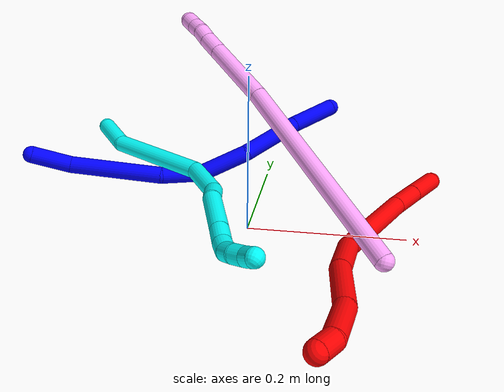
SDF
<sdf version="1.7">
 <world name="default">
  <plugin name="TubeGeneratorPlugin" filename="libtube_generator_plugin.so"/>
  <model name="photoneo_s_sensor">
   <static>1</static>
   <pose>0 0 2 1.57079 1.57079 3.14159</pose>
   <link name="link">
    <inertial><mass>0.1</mass></inertial>
    <sensor name="sensor" type="depth">
     <update_rate>30</update_rate>
     <camera>
      <horizontal_fov>1.22</horizontal_fov>
      <image><width>1920</width><height>1200</height><format>B8G8R8</format></image>
      <clip><near>0.1</near><far>4</far></clip>
      <depth_camera><output>points</output></depth_camera>
     </camera>
     <plugin name="camera_plugin" filename="libgazebo_ros_depth_camera.so">
      <baseline>0.2</baseline>
      <alwaysOn>1</alwaysOn>
      <updateRate>0.0</updateRate>
      <cameraName>camera_ir</cameraName>
      <imageTopicName>/camera/color/image_raw</imageTopicName>
      <cameraInfoTopicName>/camera/color/camera_info</cameraInfoTopicName>
      <depthImageTopicName>/camera/depth/image_raw</depthImageTopicName>
      <depthImageCameraInfoTopicName>/camera/depth/camera_info</depthImageCameraInfoTopicName>
      <pointCloudTopicName>/camera/depth/points</pointCloudTopicName>
      <frameName>fr_optical</frameName>
      <pointCloudCutoff>0.1</pointCloudCutoff>
      <pointCloudCutoffMax>2.0</pointCloudCutoffMax>
      <distortionK1>0</distortionK1>
      <distortionK2>0</distortionK2>
      <distortionK3>0</distortionK3>
      <distortionT1>0</distortionT1>
      <distortionT2>0</distortionT2>
      <CxPrime>0</CxPrime>
      <Cx>0</Cx>
      <Cy>0</Cy>
      <focalLength>0</focalLength>
      <hackBaseline>0</hackBaseline>
     </plugin>
    </sensor>
   </link>
  </model>
  <gravity>0 0 -9.8</gravity>
  <magnetic_field>6e-06 2.3e-05 -4.2e-05</magnetic_field>
  <atmosphere type="adiabatic"/>
  <physics name="default_physics" default="0" type="ode">
   <max_step_size>0.003</max_step_size>
   <real_time_factor>1</real_time_factor>
   <real_time_update_rate>1000</real_time_update_rate>
   <max_contacts>10000</max_contacts>
   <ode>
    <solver>
     <type>quick</type>
     <iters>100</iters>
     <sor>1.3</sor>
     <use_dynamic_moi_rescaling>0</use_dynamic_moi_rescaling>
    </solver>
    <constraints>
     <contact_max_correcting_vel>0</contact_max_correcting_vel>
     <contact_surface_layer>0.001</contact_surface_layer>
     <cfm>0</cfm>
     <erp>0.2</erp>
    </constraints>
   </ode>
  </physics>
  <scene><ambient>0.4 0.4 0.4 1</ambient><background>0.7 0.7 0.7 1</background><shadows>0</shadows></scene>
  <audio><device>default</device></audio>
  <spherical_coordinates>
   <surface_model>EARTH_WGS84</surface_model>
   <latitude_deg>0</latitude_deg>
   <longitude_deg>0</longitude_deg>
   <elevation>0</elevation>
   <heading_deg>0</heading_deg>
  </spherical_coordinates>
  <model name="bin">
   <static>1</static>
   <link name="bottom">
    <collision name="collision-bottom">
     <pose>0 0 -0.01 0 -0 0</pose>
     <geometry><box><size>0.8 0.6 0.02</size></box></geometry>
     <surface>
      <friction><ode><mu>100</mu><mu2>100</mu2></ode></friction>
      <contact><collide_bitmask>65535</collide_bitmask></contact>
     </surface>
    </collision>
   </link>
   <link name="west_wall">
    <collision name="collision-west_wall">
     <pose>-0.41 0 0.1 0 -0 0</pose>
     <geometry><box><size>0.02 0.6 0.2</size></box></geometry>
     <surface>
      <friction><ode><mu>100</mu><mu2>100</mu2></ode></friction>
      <contact><collide_bitmask>65535</collide_bitmask></contact>
     </surface>
    </collision>
   </link>
   <link name="east_wall">
    <collision name="collision-east_wall">
     <pose>0.41 0 0.1 0 -0 0</pose>
     <geometry><box><size>0.02 0.6 0.2</size></box></geometry>
     <surface>
      <friction><ode><mu>100</mu><mu2>100</mu2></ode></friction>
      <contact><collide_bitmask>65535</collide_bitmask></contact>
     </surface>
    </collision>
   </link>
   <link name="south_wall">
    <collision name="collision-south_wall">
     <pose>0 -0.31 0.1 0 -0 0</pose>
     <geometry><box><size>0.8 0.02 0.2</size></box></geometry>
     <surface>
      <friction><ode><mu>100</mu><mu2>100</mu2></ode></friction>
      <contact><collide_bitmask>65535</collide_bitmask></contact>
     </surface>
    </collision>
   </link>
   <link name="north_wall">
    <collision name="collision-north_wall">
     <pose>0 0.31 0.1 0 -0 0</pose>
     <geometry><box><size>0.8 0.02 0.2</size></box></geometry>
     <surface>
      <friction><ode><mu>100</mu><mu2>100</mu2></ode></friction>
      <contact><collide_bitmask>65535</collide_bitmask></contact>
     </surface>
    </collision>
   </link>
  </model>
  <model name="1">
   <static>0</static>
   <link name="1">
    <collision name="collision-cylinder-e_1_1_4">
     <pose>-0.027226 0.003458 -0.023102 -2.993 -0.861686 2.82051</pose>
     <geometry><cylinder><radius>0.0125</radius><length>0.071747</length></cylinder></geometry>
     <surface>
      <friction><ode><mu>1.16</mu><mu2>1.16</mu2><slip1>0</slip1><slip2>0</slip2></ode></friction>
      <contact><ode><kp>1e+06</kp><kd>1</kd><max_vel>0</max_vel><min_depth>0.001</min_depth></ode></contact>
     </surface>
    </collision>
    <visual name="visual-cylinder-e_1_1_4">
     <pose>-0.027226 0.003458 -0.023102 -2.993 -0.861686 2.82051</pose>
     <geometry><cylinder><radius>0.0125</radius><length>0.071747</length></cylinder></geometry>
     <material><ambient>0 0 1 1</ambient></material>
    </visual>
    <collision name="collision-cylinder-e_2_4_5">
     <pose>-0.088872 0.014991 -0.07904 -2.90048 -0.794277 2.57924</pose>
     <geometry><cylinder><radius>0.0125</radius><length>0.096501</length></cylinder></geometry>
     <surface>
      <friction><ode><mu>1.16</mu><mu2>1.16</mu2><slip1>0</slip1><slip2>0</slip2></ode></friction>
      <contact><ode><kp>1e+06</kp><kd>1</kd><max_vel>0</max_vel><min_depth>0.001</min_depth></ode></contact>
     </surface>
    </collision>
    <visual name="visual-cylinder-e_2_4_5">
     <pose>-0.088872 0.014991 -0.07904 -2.90048 -0.794277 2.57924</pose>
     <geometry><cylinder><radius>0.0125</radius><length>0.096501</length></cylinder></geometry>
     <material><ambient>0 0 1 1</ambient></material>
    </visual>
    <collision name="collision-cylinder-e_3_5_6">
     <pose>-0.157173 0.028803 -0.125675 -2.74752 -1.15537 2.54726</pose>
     <geometry><cylinder><radius>0.0125</radius><length>0.074061</length></cylinder></geometry>
     <surface>
      <friction><ode><mu>1.16</mu><mu2>1.16</mu2><slip1>0</slip1><slip2>0</slip2></ode></friction>
      <contact><ode><kp>1e+06</kp><kd>1</kd><max_vel>0</max_vel><min_depth>0.001</min_depth></ode></contact>
     </surface>
    </collision>
    <visual name="visual-cylinder-e_3_5_6">
     <pose>-0.157173 0.028803 -0.125675 -2.74752 -1.15537 2.54726</pose>
     <geometry><cylinder><radius>0.0125</radius><length>0.074061</length></cylinder></geometry>
     <material><ambient>0 0 1 1</ambient></material>
    </visual>
    <collision name="collision-cylinder-e_4_6_7">
     <pose>-0.216414 0.026785 -0.154819 2.67357 -0.97501 -2.29654</pose>
     <geometry><cylinder><radius>0.0125</radius><length>0.061278</length></cylinder></geometry>
     <surface>
      <friction><ode><mu>1.16</mu><mu2>1.16</mu2><slip1>0</slip1><slip2>0</slip2></ode></friction>
      <contact><ode><kp>1e+06</kp><kd>1</kd><max_vel>0</max_vel><min_depth>0.001</min_depth></ode></contact>
     </surface>
    </collision>
    <visual name="visual-cylinder-e_4_6_7">
     <pose>-0.216414 0.026785 -0.154819 2.67357 -0.97501 -2.29654</pose>
     <geometry><cylinder><radius>0.0125</radius><length>0.061278</length></cylinder></geometry>
     <material><ambient>0 0 1 1</ambient></material>
    </visual>
    <collision name="collision-cylinder-e_5_7_8">
     <pose>-0.305111 -0.004686 -0.181426 2.01417 -1.17786 -1.62597</pose>
     <geometry><cylinder><radius>0.0125</radius><length>0.137124</length></cylinder></geometry>
     <surface>
      <friction><ode><mu>1.16</mu><mu2>1.16</mu2><slip1>0</slip1><slip2>0</slip2></ode></friction>
      <contact><ode><kp>1e+06</kp><kd>1</kd><max_vel>0</max_vel><min_depth>0.001</min_depth></ode></contact>
     </surface>
    </collision>
    <visual name="visual-cylinder-e_5_7_8">
     <pose>-0.305111 -0.004686 -0.181426 2.01417 -1.17786 -1.62597</pose>
     <geometry><cylinder><radius>0.0125</radius><length>0.137124</length></cylinder></geometry>
     <material><ambient>0 0 1 1</ambient></material>
    </visual>
    <collision name="collision-cylinder-e_6_8_2">
     <pose>-0.390634 -0.043952 -0.204716 2.2291 -0.845668 -1.4841</pose>
     <geometry><cylinder><radius>0.0125</radius><length>0.059288</length></cylinder></geometry>
     <surface>
      <friction><ode><mu>1.16</mu><mu2>1.16</mu2><slip1>0</slip1><slip2>0</slip2></ode></friction>
      <contact><ode><kp>1e+06</kp><kd>1</kd><max_vel>0</max_vel><min_depth>0.001</min_depth></ode></contact>
     </surface>
    </collision>
    <visual name="visual-cylinder-e_6_8_2">
     <pose>-0.390634 -0.043952 -0.204716 2.2291 -0.845668 -1.4841</pose>
     <geometry><cylinder><radius>0.0125</radius><length>0.059288</length></cylinder></geometry>
     <material><ambient>0 0 1 1</ambient></material>
    </visual>
    <collision name="collision-sphere-2">
     <pose>-0.41282 -0.059505 -0.216744 0 -0 0</pose>
     <geometry><sphere><radius>0.0125</radius></sphere></geometry>
     <surface>
      <friction><ode><mu>1.16</mu><mu2>1.16</mu2><slip1>0</slip1><slip2>0</slip2></ode></friction>
      <contact><ode><kp>1e+06</kp><kd>1</kd><max_vel>0</max_vel><min_depth>0.001</min_depth></ode></contact>
     </surface>
    </collision>
    <visual name="visual-sphere-2">
     <pose>-0.41282 -0.059505 -0.216744 0 -0 0</pose>
     <geometry><sphere><radius>0.0125</radius></sphere></geometry>
     <material><ambient>0 0 1 1</ambient></material>
    </visual>
    <collision name="collision-sphere-4">
     <pose>-0.054452 0.006916 -0.046204 0 -0 0</pose>
     <geometry><sphere><radius>0.0125</radius></sphere></geometry>
     <surface>
      <friction><ode><mu>1.16</mu><mu2>1.16</mu2><slip1>0</slip1><slip2>0</slip2></ode></friction>
      <contact><ode><kp>1e+06</kp><kd>1</kd><max_vel>0</max_vel><min_depth>0.001</min_depth></ode></contact>
     </surface>
    </collision>
    <visual name="visual-sphere-4">
     <pose>-0.054452 0.006916 -0.046204 0 -0 0</pose>
     <geometry><sphere><radius>0.0125</radius></sphere></geometry>
     <material><ambient>0 0 1 1</ambient></material>
    </visual>
    <collision name="collision-sphere-1">
     <geometry><sphere><radius>0.0125</radius></sphere></geometry>
     <surface>
      <friction><ode><mu>1.16</mu><mu2>1.16</mu2><slip1>0</slip1><slip2>0</slip2></ode></friction>
      <contact><ode><kp>1e+06</kp><kd>1</kd><max_vel>0</max_vel><min_depth>0.001</min_depth></ode></contact>
     </surface>
    </collision>
    <visual name="visual-sphere-1">
     <geometry><sphere><radius>0.0125</radius></sphere></geometry>
     <material><ambient>0 0 1 1</ambient></material>
    </visual>
    <collision name="collision-sphere-8">
     <pose>-0.368448 -0.0284 -0.192688 0 -0 0</pose>
     <geometry><sphere><radius>0.0125</radius></sphere></geometry>
     <surface>
      <friction><ode><mu>1.16</mu><mu2>1.16</mu2><slip1>0</slip1><slip2>0</slip2></ode></friction>
      <contact><ode><kp>1e+06</kp><kd>1</kd><max_vel>0</max_vel><min_depth>0.001</min_depth></ode></contact>
     </surface>
    </collision>
    <visual name="visual-sphere-8">
     <pose>-0.368448 -0.0284 -0.192688 0 -0 0</pose>
     <geometry><sphere><radius>0.0125</radius></sphere></geometry>
     <material><ambient>0 0 1 1</ambient></material>
    </visual>
    <collision name="collision-sphere-5">
     <pose>-0.123292 0.023065 -0.111876 0 -0 0</pose>
     <geometry><sphere><radius>0.0125</radius></sphere></geometry>
     <surface>
      <friction><ode><mu>1.16</mu><mu2>1.16</mu2><slip1>0</slip1><slip2>0</slip2></ode></friction>
      <contact><ode><kp>1e+06</kp><kd>1</kd><max_vel>0</max_vel><min_depth>0.001</min_depth></ode></contact>
     </surface>
    </collision>
    <visual name="visual-sphere-5">
     <pose>-0.123292 0.023065 -0.111876 0 -0 0</pose>
     <geometry><sphere><radius>0.0125</radius></sphere></geometry>
     <material><ambient>0 0 1 1</ambient></material>
    </visual>
    <collision name="collision-sphere-6">
     <pose>-0.191054 0.034541 -0.139475 0 -0 0</pose>
     <geometry><sphere><radius>0.0125</radius></sphere></geometry>
     <surface>
      <friction><ode><mu>1.16</mu><mu2>1.16</mu2><slip1>0</slip1><slip2>0</slip2></ode></friction>
      <contact><ode><kp>1e+06</kp><kd>1</kd><max_vel>0</max_vel><min_depth>0.001</min_depth></ode></contact>
     </surface>
    </collision>
    <visual name="visual-sphere-6">
     <pose>-0.191054 0.034541 -0.139475 0 -0 0</pose>
     <geometry><sphere><radius>0.0125</radius></sphere></geometry>
     <material><ambient>0 0 1 1</ambient></material>
    </visual>
    <collision name="collision-sphere-7">
     <pose>-0.241775 0.019028 -0.170164 0 -0 0</pose>
     <geometry><sphere><radius>0.0125</radius></sphere></geometry>
     <surface>
      <friction><ode><mu>1.16</mu><mu2>1.16</mu2><slip1>0</slip1><slip2>0</slip2></ode></friction>
      <contact><ode><kp>1e+06</kp><kd>1</kd><max_vel>0</max_vel><min_depth>0.001</min_depth></ode></contact>
     </surface>
    </collision>
    <visual name="visual-sphere-7">
     <pose>-0.241775 0.019028 -0.170164 0 -0 0</pose>
     <geometry><sphere><radius>0.0125</radius></sphere></geometry>
     <material><ambient>0 0 1 1</ambient></material>
    </visual>
    <inertial>
     <pose>-0.200859 0.004442 -0.130189 0 -0 0</pose>
     <mass>0.5</mass>
     <inertia>
      <ixx>-0.000185</ixx>
      <ixy>0</ixy>
      <ixz>0</ixz>
      <iyy>0.000292</iyy>
      <iyz>0</iyz>
      <izz>0.000404</izz>
     </inertia>
    </inertial>
   </link>
   <pose>0.089296 0.287587 0.088525 -1.62464 -0.270374 -0.054335</pose>
  </model>
  <model name="2">
   <static>0</static>
   <link name="2">
    <collision name="collision-cylinder-e_1_1_4">
     <pose>-0.013956 -0.027419 0.003016 1.46123 -0.468383 -0.421189</pose>
     <geometry><cylinder><radius>0.0125</radius><length>0.061828</length></cylinder></geometry>
     <surface>
      <friction><ode><mu>1.16</mu><mu2>1.16</mu2><slip1>0</slip1><slip2>0</slip2></ode></friction>
      <contact><ode><kp>1e+06</kp><kd>1</kd><max_vel>0</max_vel><min_depth>0.001</min_depth></ode></contact>
     </surface>
    </collision>
    <visual name="visual-cylinder-e_1_1_4">
     <pose>-0.013956 -0.027419 0.003016 1.46123 -0.468383 -0.421189</pose>
     <geometry><cylinder><radius>0.0125</radius><length>0.061828</length></cylinder></geometry>
     <material><ambient>1 0 0 1</ambient></material>
    </visual>
    <collision name="collision-cylinder-e_2_4_5">
     <pose>-0.039268 -0.077654 0.008389 1.46788 -0.459718 -0.416039</pose>
     <geometry><cylinder><radius>0.0125</radius><length>0.051189</length></cylinder></geometry>
     <surface>
      <friction><ode><mu>1.16</mu><mu2>1.16</mu2><slip1>0</slip1><slip2>0</slip2></ode></friction>
      <contact><ode><kp>1e+06</kp><kd>1</kd><max_vel>0</max_vel><min_depth>0.001</min_depth></ode></contact>
     </surface>
    </collision>
    <visual name="visual-cylinder-e_2_4_5">
     <pose>-0.039268 -0.077654 0.008389 1.46788 -0.459718 -0.416039</pose>
     <geometry><cylinder><radius>0.0125</radius><length>0.051189</length></cylinder></geometry>
     <material><ambient>1 0 0 1</ambient></material>
    </visual>
    <collision name="collision-cylinder-e_3_5_6">
     <pose>-0.080213 -0.168095 0.022789 1.39455 -0.406748 -0.342108</pose>
     <geometry><cylinder><radius>0.0125</radius><length>0.149581</length></cylinder></geometry>
     <surface>
      <friction><ode><mu>1.16</mu><mu2>1.16</mu2><slip1>0</slip1><slip2>0</slip2></ode></friction>
      <contact><ode><kp>1e+06</kp><kd>1</kd><max_vel>0</max_vel><min_depth>0.001</min_depth></ode></contact>
     </surface>
    </collision>
    <visual name="visual-cylinder-e_3_5_6">
     <pose>-0.080213 -0.168095 0.022789 1.39455 -0.406748 -0.342108</pose>
     <geometry><cylinder><radius>0.0125</radius><length>0.149581</length></cylinder></geometry>
     <material><ambient>1 0 0 1</ambient></material>
    </visual>
    <collision name="collision-cylinder-e_4_6_7">
     <pose>-0.116738 -0.26676 0.049571 1.12751 -0.199171 -0.126165</pose>
     <geometry><cylinder><radius>0.0125</radius><length>0.070109</length></cylinder></geometry>
     <surface>
      <friction><ode><mu>1.16</mu><mu2>1.16</mu2><slip1>0</slip1><slip2>0</slip2></ode></friction>
      <contact><ode><kp>1e+06</kp><kd>1</kd><max_vel>0</max_vel><min_depth>0.001</min_depth></ode></contact>
     </surface>
    </collision>
    <visual name="visual-cylinder-e_4_6_7">
     <pose>-0.116738 -0.26676 0.049571 1.12751 -0.199171 -0.126165</pose>
     <geometry><cylinder><radius>0.0125</radius><length>0.070109</length></cylinder></geometry>
     <material><ambient>1 0 0 1</ambient></material>
    </visual>
    <collision name="collision-cylinder-e_5_7_8">
     <pose>-0.122622 -0.331812 0.08082 1.11886 0.027826 0.017424</pose>
     <geometry><cylinder><radius>0.0125</radius><length>0.075646</length></cylinder></geometry>
     <surface>
      <friction><ode><mu>1.16</mu><mu2>1.16</mu2><slip1>0</slip1><slip2>0</slip2></ode></friction>
      <contact><ode><kp>1e+06</kp><kd>1</kd><max_vel>0</max_vel><min_depth>0.001</min_depth></ode></contact>
     </surface>
    </collision>
    <visual name="visual-cylinder-e_5_7_8">
     <pose>-0.122622 -0.331812 0.08082 1.11886 0.027826 0.017424</pose>
     <geometry><cylinder><radius>0.0125</radius><length>0.075646</length></cylinder></geometry>
     <material><ambient>1 0 0 1</ambient></material>
    </visual>
    <collision name="collision-cylinder-e_6_8_9">
     <pose>-0.128312 -0.394487 0.10906 1.18237 -0.214386 -0.144215</pose>
     <geometry><cylinder><radius>0.0125</radius><length>0.06339</length></cylinder></geometry>
     <surface>
      <friction><ode><mu>1.16</mu><mu2>1.16</mu2><slip1>0</slip1><slip2>0</slip2></ode></friction>
      <contact><ode><kp>1e+06</kp><kd>1</kd><max_vel>0</max_vel><min_depth>0.001</min_depth></ode></contact>
     </surface>
    </collision>
    <visual name="visual-cylinder-e_6_8_9">
     <pose>-0.128312 -0.394487 0.10906 1.18237 -0.214386 -0.144215</pose>
     <geometry><cylinder><radius>0.0125</radius><length>0.06339</length></cylinder></geometry>
     <material><ambient>1 0 0 1</ambient></material>
    </visual>
    <collision name="collision-cylinder-e_7_9_2">
     <pose>-0.141947 -0.435314 0.122826 1.4049 -0.509543 -0.433963</pose>
     <geometry><cylinder><radius>0.0125</radius><length>0.028257</length></cylinder></geometry>
     <surface>
      <friction><ode><mu>1.16</mu><mu2>1.16</mu2><slip1>0</slip1><slip2>0</slip2></ode></friction>
      <contact><ode><kp>1e+06</kp><kd>1</kd><max_vel>0</max_vel><min_depth>0.001</min_depth></ode></contact>
     </surface>
    </collision>
    <visual name="visual-cylinder-e_7_9_2">
     <pose>-0.141947 -0.435314 0.122826 1.4049 -0.509543 -0.433963</pose>
     <geometry><cylinder><radius>0.0125</radius><length>0.028257</length></cylinder></geometry>
     <material><ambient>1 0 0 1</ambient></material>
    </visual>
    <collision name="collision-sphere-2">
     <pose>-0.148838 -0.447478 0.124863 0 -0 0</pose>
     <geometry><sphere><radius>0.0125</radius></sphere></geometry>
     <surface>
      <friction><ode><mu>1.16</mu><mu2>1.16</mu2><slip1>0</slip1><slip2>0</slip2></ode></friction>
      <contact><ode><kp>1e+06</kp><kd>1</kd><max_vel>0</max_vel><min_depth>0.001</min_depth></ode></contact>
     </surface>
    </collision>
    <visual name="visual-sphere-2">
     <pose>-0.148838 -0.447478 0.124863 0 -0 0</pose>
     <geometry><sphere><radius>0.0125</radius></sphere></geometry>
     <material><ambient>1 0 0 1</ambient></material>
    </visual>
    <collision name="collision-sphere-9">
     <pose>-0.135055 -0.42315 0.120789 0 -0 0</pose>
     <geometry><sphere><radius>0.0125</radius></sphere></geometry>
     <surface>
      <friction><ode><mu>1.16</mu><mu2>1.16</mu2><slip1>0</slip1><slip2>0</slip2></ode></friction>
      <contact><ode><kp>1e+06</kp><kd>1</kd><max_vel>0</max_vel><min_depth>0.001</min_depth></ode></contact>
     </surface>
    </collision>
    <visual name="visual-sphere-9">
     <pose>-0.135055 -0.42315 0.120789 0 -0 0</pose>
     <geometry><sphere><radius>0.0125</radius></sphere></geometry>
     <material><ambient>1 0 0 1</ambient></material>
    </visual>
    <collision name="collision-sphere-4">
     <pose>-0.027912 -0.054839 0.006033 0 -0 0</pose>
     <geometry><sphere><radius>0.0125</radius></sphere></geometry>
     <surface>
      <friction><ode><mu>1.16</mu><mu2>1.16</mu2><slip1>0</slip1><slip2>0</slip2></ode></friction>
      <contact><ode><kp>1e+06</kp><kd>1</kd><max_vel>0</max_vel><min_depth>0.001</min_depth></ode></contact>
     </surface>
    </collision>
    <visual name="visual-sphere-4">
     <pose>-0.027912 -0.054839 0.006033 0 -0 0</pose>
     <geometry><sphere><radius>0.0125</radius></sphere></geometry>
     <material><ambient>1 0 0 1</ambient></material>
    </visual>
    <collision name="collision-sphere-1">
     <geometry><sphere><radius>0.0125</radius></sphere></geometry>
     <surface>
      <friction><ode><mu>1.16</mu><mu2>1.16</mu2><slip1>0</slip1><slip2>0</slip2></ode></friction>
      <contact><ode><kp>1e+06</kp><kd>1</kd><max_vel>0</max_vel><min_depth>0.001</min_depth></ode></contact>
     </surface>
    </collision>
    <visual name="visual-sphere-1">
     <geometry><sphere><radius>0.0125</radius></sphere></geometry>
     <material><ambient>1 0 0 1</ambient></material>
    </visual>
    <collision name="collision-sphere-8">
     <pose>-0.121569 -0.365825 0.097331 0 -0 0</pose>
     <geometry><sphere><radius>0.0125</radius></sphere></geometry>
     <surface>
      <friction><ode><mu>1.16</mu><mu2>1.16</mu2><slip1>0</slip1><slip2>0</slip2></ode></friction>
      <contact><ode><kp>1e+06</kp><kd>1</kd><max_vel>0</max_vel><min_depth>0.001</min_depth></ode></contact>
     </surface>
    </collision>
    <visual name="visual-sphere-8">
     <pose>-0.121569 -0.365825 0.097331 0 -0 0</pose>
     <geometry><sphere><radius>0.0125</radius></sphere></geometry>
     <material><ambient>1 0 0 1</ambient></material>
    </visual>
    <collision name="collision-sphere-5">
     <pose>-0.050624 -0.10047 0.010745 0 -0 0</pose>
     <geometry><sphere><radius>0.0125</radius></sphere></geometry>
     <surface>
      <friction><ode><mu>1.16</mu><mu2>1.16</mu2><slip1>0</slip1><slip2>0</slip2></ode></friction>
      <contact><ode><kp>1e+06</kp><kd>1</kd><max_vel>0</max_vel><min_depth>0.001</min_depth></ode></contact>
     </surface>
    </collision>
    <visual name="visual-sphere-5">
     <pose>-0.050624 -0.10047 0.010745 0 -0 0</pose>
     <geometry><sphere><radius>0.0125</radius></sphere></geometry>
     <material><ambient>1 0 0 1</ambient></material>
    </visual>
    <collision name="collision-sphere-6">
     <pose>-0.109803 -0.235719 0.034833 0 -0 0</pose>
     <geometry><sphere><radius>0.0125</radius></sphere></geometry>
     <surface>
      <friction><ode><mu>1.16</mu><mu2>1.16</mu2><slip1>0</slip1><slip2>0</slip2></ode></friction>
      <contact><ode><kp>1e+06</kp><kd>1</kd><max_vel>0</max_vel><min_depth>0.001</min_depth></ode></contact>
     </surface>
    </collision>
    <visual name="visual-sphere-6">
     <pose>-0.109803 -0.235719 0.034833 0 -0 0</pose>
     <geometry><sphere><radius>0.0125</radius></sphere></geometry>
     <material><ambient>1 0 0 1</ambient></material>
    </visual>
    <collision name="collision-sphere-7">
     <pose>-0.123674 -0.2978 0.064309 0 -0 0</pose>
     <geometry><sphere><radius>0.0125</radius></sphere></geometry>
     <surface>
      <friction><ode><mu>1.16</mu><mu2>1.16</mu2><slip1>0</slip1><slip2>0</slip2></ode></friction>
      <contact><ode><kp>1e+06</kp><kd>1</kd><max_vel>0</max_vel><min_depth>0.001</min_depth></ode></contact>
     </surface>
    </collision>
    <visual name="visual-sphere-7">
     <pose>-0.123674 -0.2978 0.064309 0 -0 0</pose>
     <geometry><sphere><radius>0.0125</radius></sphere></geometry>
     <material><ambient>1 0 0 1</ambient></material>
    </visual>
    <inertial>
     <pose>-0.088953 -0.223847 0.047996 0 -0 0</pose>
     <mass>0.5</mass>
     <inertia><ixx>0.00025</ixx><ixy>0</ixy><ixz>0</ixz><iyy>-7e-06</iyy><iyz>0</iyz><izz>0.000526</izz></inertia>
    </inertial>
   </link>
   <pose>0.243234 0.179535 0.012982 0.45996 0.580436 0.075222</pose>
  </model>
  <model name="3">
   <static>0</static>
   <link name="3">
    <collision name="collision-cylinder-e_1_1_4">
     <pose>0.017015 -0.022647 0.016199 0.949889 0.548545 0.287361</pose>
     <geometry><cylinder><radius>0.0125</radius><length>0.065263</length></cylinder></geometry>
     <surface>
      <friction><ode><mu>1.16</mu><mu2>1.16</mu2><slip1>0</slip1><slip2>0</slip2></ode></friction>
      <contact><ode><kp>1e+06</kp><kd>1</kd><max_vel>0</max_vel><min_depth>0.001</min_depth></ode></contact>
     </surface>
    </collision>
    <visual name="visual-cylinder-e_1_1_4">
     <pose>0.017015 -0.022647 0.016199 0.949889 0.548545 0.287361</pose>
     <geometry><cylinder><radius>0.0125</radius><length>0.065263</length></cylinder></geometry>
     <material><ambient>0.003922 1 0.996078 1</ambient></material>
    </visual>
    <collision name="collision-cylinder-e_2_4_5">
     <pose>0.071527 -0.111654 0.043027 1.41197 0.508899 0.436423</pose>
     <geometry><cylinder><radius>0.0125</radius><length>0.153918</length></cylinder></geometry>
     <surface>
      <friction><ode><mu>1.16</mu><mu2>1.16</mu2><slip1>0</slip1><slip2>0</slip2></ode></friction>
      <contact><ode><kp>1e+06</kp><kd>1</kd><max_vel>0</max_vel><min_depth>0.001</min_depth></ode></contact>
     </surface>
    </collision>
    <visual name="visual-cylinder-e_2_4_5">
     <pose>0.071527 -0.111654 0.043027 1.41197 0.508899 0.436423</pose>
     <geometry><cylinder><radius>0.0125</radius><length>0.153918</length></cylinder></geometry>
     <material><ambient>0.003922 1 0.996078 1</ambient></material>
    </visual>
    <collision name="collision-cylinder-e_3_5_6">
     <pose>0.129421 -0.198894 0.071786 0.855752 0.635591 0.297811</pose>
     <geometry><cylinder><radius>0.0125</radius><length>0.068723</length></cylinder></geometry>
     <surface>
      <friction><ode><mu>1.16</mu><mu2>1.16</mu2><slip1>0</slip1><slip2>0</slip2></ode></friction>
      <contact><ode><kp>1e+06</kp><kd>1</kd><max_vel>0</max_vel><min_depth>0.001</min_depth></ode></contact>
     </surface>
    </collision>
    <visual name="visual-cylinder-e_3_5_6">
     <pose>0.129421 -0.198894 0.071786 0.855752 0.635591 0.297811</pose>
     <geometry><cylinder><radius>0.0125</radius><length>0.068723</length></cylinder></geometry>
     <material><ambient>0.003922 1 0.996078 1</ambient></material>
    </visual>
    <collision name="collision-cylinder-e_4_6_7">
     <pose>0.161997 -0.222748 0.101302 0.255607 0.80247 0.108928</pose>
     <geometry><cylinder><radius>0.0125</radius><length>0.033869</length></cylinder></geometry>
     <surface>
      <friction><ode><mu>1.16</mu><mu2>1.16</mu2><slip1>0</slip1><slip2>0</slip2></ode></friction>
      <contact><ode><kp>1e+06</kp><kd>1</kd><max_vel>0</max_vel><min_depth>0.001</min_depth></ode></contact>
     </surface>
    </collision>
    <visual name="visual-cylinder-e_4_6_7">
     <pose>0.161997 -0.222748 0.101302 0.255607 0.80247 0.108928</pose>
     <geometry><cylinder><radius>0.0125</radius><length>0.033869</length></cylinder></geometry>
     <material><ambient>0.003922 1 0.996078 1</ambient></material>
    </visual>
    <collision name="collision-cylinder-e_5_7_8">
     <pose>0.193227 -0.241007 0.138126 0.541019 0.570748 0.162356</pose>
     <geometry><cylinder><radius>0.0125</radius><length>0.070532</length></cylinder></geometry>
     <surface>
      <friction><ode><mu>1.16</mu><mu2>1.16</mu2><slip1>0</slip1><slip2>0</slip2></ode></friction>
      <contact><ode><kp>1e+06</kp><kd>1</kd><max_vel>0</max_vel><min_depth>0.001</min_depth></ode></contact>
     </surface>
    </collision>
    <visual name="visual-cylinder-e_5_7_8">
     <pose>0.193227 -0.241007 0.138126 0.541019 0.570748 0.162356</pose>
     <geometry><cylinder><radius>0.0125</radius><length>0.070532</length></cylinder></geometry>
     <material><ambient>0.003922 1 0.996078 1</ambient></material>
    </visual>
    <collision name="collision-cylinder-e_6_8_9">
     <pose>0.219633 -0.262159 0.173626 0.527995 0.563095 0.156044</pose>
     <geometry><cylinder><radius>0.0125</radius><length>0.02755</length></cylinder></geometry>
     <surface>
      <friction><ode><mu>1.16</mu><mu2>1.16</mu2><slip1>0</slip1><slip2>0</slip2></ode></friction>
      <contact><ode><kp>1e+06</kp><kd>1</kd><max_vel>0</max_vel><min_depth>0.001</min_depth></ode></contact>
     </surface>
    </collision>
    <visual name="visual-cylinder-e_6_8_9">
     <pose>0.219633 -0.262159 0.173626 0.527995 0.563095 0.156044</pose>
     <geometry><cylinder><radius>0.0125</radius><length>0.02755</length></cylinder></geometry>
     <material><ambient>0.003922 1 0.996078 1</ambient></material>
    </visual>
    <collision name="collision-cylinder-e_7_9_10">
     <pose>0.233349 -0.27246 0.190099 0.604926 0.684596 0.221463</pose>
     <geometry><cylinder><radius>0.0125</radius><length>0.020123</length></cylinder></geometry>
     <surface>
      <friction><ode><mu>1.16</mu><mu2>1.16</mu2><slip1>0</slip1><slip2>0</slip2></ode></friction>
      <contact><ode><kp>1e+06</kp><kd>1</kd><max_vel>0</max_vel><min_depth>0.001</min_depth></ode></contact>
     </surface>
    </collision>
    <visual name="visual-cylinder-e_7_9_10">
     <pose>0.233349 -0.27246 0.190099 0.604926 0.684596 0.221463</pose>
     <geometry><cylinder><radius>0.0125</radius><length>0.020123</length></cylinder></geometry>
     <material><ambient>0.003922 1 0.996078 1</ambient></material>
    </visual>
    <collision name="collision-cylinder-e_8_10_11">
     <pose>0.248025 -0.281851 0.199028 1.10093 0.98123 0.633613</pose>
     <geometry><cylinder><radius>0.0125</radius><length>0.020005</length></cylinder></geometry>
     <surface>
      <friction><ode><mu>1.16</mu><mu2>1.16</mu2><slip1>0</slip1><slip2>0</slip2></ode></friction>
      <contact><ode><kp>1e+06</kp><kd>1</kd><max_vel>0</max_vel><min_depth>0.001</min_depth></ode></contact>
     </surface>
    </collision>
    <visual name="visual-cylinder-e_8_10_11">
     <pose>0.248025 -0.281851 0.199028 1.10093 0.98123 0.633613</pose>
     <geometry><cylinder><radius>0.0125</radius><length>0.020005</length></cylinder></geometry>
     <material><ambient>0.003922 1 0.996078 1</ambient></material>
    </visual>
    <collision name="collision-cylinder-e_9_11_12">
     <pose>0.263437 -0.293778 0.202603 1.42024 0.788947 0.687399</pose>
     <geometry><cylinder><radius>0.0125</radius><length>0.020005</length></cylinder></geometry>
     <surface>
      <friction><ode><mu>1.16</mu><mu2>1.16</mu2><slip1>0</slip1><slip2>0</slip2></ode></friction>
      <contact><ode><kp>1e+06</kp><kd>1</kd><max_vel>0</max_vel><min_depth>0.001</min_depth></ode></contact>
     </surface>
    </collision>
    <visual name="visual-cylinder-e_9_11_12">
     <pose>0.263437 -0.293778 0.202603 1.42024 0.788947 0.687399</pose>
     <geometry><cylinder><radius>0.0125</radius><length>0.020005</length></cylinder></geometry>
     <material><ambient>0.003922 1 0.996078 1</ambient></material>
    </visual>
    <collision name="collision-cylinder-e_10_12_2">
     <pose>0.279281 -0.305291 0.205383 1.20837 1.06358 0.771546</pose>
     <geometry><cylinder><radius>0.0125</radius><length>0.020013</length></cylinder></geometry>
     <surface>
      <friction><ode><mu>1.16</mu><mu2>1.16</mu2><slip1>0</slip1><slip2>0</slip2></ode></friction>
      <contact><ode><kp>1e+06</kp><kd>1</kd><max_vel>0</max_vel><min_depth>0.001</min_depth></ode></contact>
     </surface>
    </collision>
    <visual name="visual-cylinder-e_10_12_2">
     <pose>0.279281 -0.305291 0.205383 1.20837 1.06358 0.771546</pose>
     <geometry><cylinder><radius>0.0125</radius><length>0.020013</length></cylinder></geometry>
     <material><ambient>0.003922 1 0.996078 1</ambient></material>
    </visual>
    <collision name="collision-sphere-2">
     <pose>0.288028 -0.309836 0.207107 0 -0 0</pose>
     <geometry><sphere><radius>0.0125</radius></sphere></geometry>
     <surface>
      <friction><ode><mu>1.16</mu><mu2>1.16</mu2><slip1>0</slip1><slip2>0</slip2></ode></friction>
      <contact><ode><kp>1e+06</kp><kd>1</kd><max_vel>0</max_vel><min_depth>0.001</min_depth></ode></contact>
     </surface>
    </collision>
    <visual name="visual-sphere-2">
     <pose>0.288028 -0.309836 0.207107 0 -0 0</pose>
     <geometry><sphere><radius>0.0125</radius></sphere></geometry>
     <material><ambient>0.003922 1 0.996078 1</ambient></material>
    </visual>
    <collision name="collision-sphere-12">
     <pose>0.270535 -0.300746 0.20366 0 -0 0</pose>
     <geometry><sphere><radius>0.0125</radius></sphere></geometry>
     <surface>
      <friction><ode><mu>1.16</mu><mu2>1.16</mu2><slip1>0</slip1><slip2>0</slip2></ode></friction>
      <contact><ode><kp>1e+06</kp><kd>1</kd><max_vel>0</max_vel><min_depth>0.001</min_depth></ode></contact>
     </surface>
    </collision>
    <visual name="visual-sphere-12">
     <pose>0.270535 -0.300746 0.20366 0 -0 0</pose>
     <geometry><sphere><radius>0.0125</radius></sphere></geometry>
     <material><ambient>0.003922 1 0.996078 1</ambient></material>
    </visual>
    <collision name="collision-sphere-11">
     <pose>0.256338 -0.28681 0.201546 0 -0 0</pose>
     <geometry><sphere><radius>0.0125</radius></sphere></geometry>
     <surface>
      <friction><ode><mu>1.16</mu><mu2>1.16</mu2><slip1>0</slip1><slip2>0</slip2></ode></friction>
      <contact><ode><kp>1e+06</kp><kd>1</kd><max_vel>0</max_vel><min_depth>0.001</min_depth></ode></contact>
     </surface>
    </collision>
    <visual name="visual-sphere-11">
     <pose>0.256338 -0.28681 0.201546 0 -0 0</pose>
     <geometry><sphere><radius>0.0125</radius></sphere></geometry>
     <material><ambient>0.003922 1 0.996078 1</ambient></material>
    </visual>
    <collision name="collision-sphere-10">
     <pose>0.239711 -0.276893 0.19651 0 -0 0</pose>
     <geometry><sphere><radius>0.0125</radius></sphere></geometry>
     <surface>
      <friction><ode><mu>1.16</mu><mu2>1.16</mu2><slip1>0</slip1><slip2>0</slip2></ode></friction>
      <contact><ode><kp>1e+06</kp><kd>1</kd><max_vel>0</max_vel><min_depth>0.001</min_depth></ode></contact>
     </surface>
    </collision>
    <visual name="visual-sphere-10">
     <pose>0.239711 -0.276893 0.19651 0 -0 0</pose>
     <geometry><sphere><radius>0.0125</radius></sphere></geometry>
     <material><ambient>0.003922 1 0.996078 1</ambient></material>
    </visual>
    <collision name="collision-sphere-9">
     <pose>0.226986 -0.268027 0.183688 0 -0 0</pose>
     <geometry><sphere><radius>0.0125</radius></sphere></geometry>
     <surface>
      <friction><ode><mu>1.16</mu><mu2>1.16</mu2><slip1>0</slip1><slip2>0</slip2></ode></friction>
      <contact><ode><kp>1e+06</kp><kd>1</kd><max_vel>0</max_vel><min_depth>0.001</min_depth></ode></contact>
     </surface>
    </collision>
    <visual name="visual-sphere-9">
     <pose>0.226986 -0.268027 0.183688 0 -0 0</pose>
     <geometry><sphere><radius>0.0125</radius></sphere></geometry>
     <material><ambient>0.003922 1 0.996078 1</ambient></material>
    </visual>
    <collision name="collision-sphere-4">
     <pose>0.034031 -0.045293 0.032397 0 -0 0</pose>
     <geometry><sphere><radius>0.0125</radius></sphere></geometry>
     <surface>
      <friction><ode><mu>1.16</mu><mu2>1.16</mu2><slip1>0</slip1><slip2>0</slip2></ode></friction>
      <contact><ode><kp>1e+06</kp><kd>1</kd><max_vel>0</max_vel><min_depth>0.001</min_depth></ode></contact>
     </surface>
    </collision>
    <visual name="visual-sphere-4">
     <pose>0.034031 -0.045293 0.032397 0 -0 0</pose>
     <geometry><sphere><radius>0.0125</radius></sphere></geometry>
     <material><ambient>0.003922 1 0.996078 1</ambient></material>
    </visual>
    <collision name="collision-sphere-1">
     <geometry><sphere><radius>0.0125</radius></sphere></geometry>
     <surface>
      <friction><ode><mu>1.16</mu><mu2>1.16</mu2><slip1>0</slip1><slip2>0</slip2></ode></friction>
      <contact><ode><kp>1e+06</kp><kd>1</kd><max_vel>0</max_vel><min_depth>0.001</min_depth></ode></contact>
     </surface>
    </collision>
    <visual name="visual-sphere-1">
     <geometry><sphere><radius>0.0125</radius></sphere></geometry>
     <material><ambient>0.003922 1 0.996078 1</ambient></material>
    </visual>
    <collision name="collision-sphere-8">
     <pose>0.21228 -0.256291 0.163564 0 -0 0</pose>
     <geometry><sphere><radius>0.0125</radius></sphere></geometry>
     <surface>
      <friction><ode><mu>1.16</mu><mu2>1.16</mu2><slip1>0</slip1><slip2>0</slip2></ode></friction>
      <contact><ode><kp>1e+06</kp><kd>1</kd><max_vel>0</max_vel><min_depth>0.001</min_depth></ode></contact>
     </surface>
    </collision>
    <visual name="visual-sphere-8">
     <pose>0.21228 -0.256291 0.163564 0 -0 0</pose>
     <geometry><sphere><radius>0.0125</radius></sphere></geometry>
     <material><ambient>0.003922 1 0.996078 1</ambient></material>
    </visual>
    <collision name="collision-sphere-5">
     <pose>0.109022 -0.178015 0.053656 0 -0 0</pose>
     <geometry><sphere><radius>0.0125</radius></sphere></geometry>
     <surface>
      <friction><ode><mu>1.16</mu><mu2>1.16</mu2><slip1>0</slip1><slip2>0</slip2></ode></friction>
      <contact><ode><kp>1e+06</kp><kd>1</kd><max_vel>0</max_vel><min_depth>0.001</min_depth></ode></contact>
     </surface>
    </collision>
    <visual name="visual-sphere-5">
     <pose>0.109022 -0.178015 0.053656 0 -0 0</pose>
     <geometry><sphere><radius>0.0125</radius></sphere></geometry>
     <material><ambient>0.003922 1 0.996078 1</ambient></material>
    </visual>
    <collision name="collision-sphere-6">
     <pose>0.14982 -0.219773 0.089916 0 -0 0</pose>
     <geometry><sphere><radius>0.0125</radius></sphere></geometry>
     <surface>
      <friction><ode><mu>1.16</mu><mu2>1.16</mu2><slip1>0</slip1><slip2>0</slip2></ode></friction>
      <contact><ode><kp>1e+06</kp><kd>1</kd><max_vel>0</max_vel><min_depth>0.001</min_depth></ode></contact>
     </surface>
    </collision>
    <visual name="visual-sphere-6">
     <pose>0.14982 -0.219773 0.089916 0 -0 0</pose>
     <geometry><sphere><radius>0.0125</radius></sphere></geometry>
     <material><ambient>0.003922 1 0.996078 1</ambient></material>
    </visual>
    <collision name="collision-sphere-7">
     <pose>0.174174 -0.225723 0.112688 0 -0 0</pose>
     <geometry><sphere><radius>0.0125</radius></sphere></geometry>
     <surface>
      <friction><ode><mu>1.16</mu><mu2>1.16</mu2><slip1>0</slip1><slip2>0</slip2></ode></friction>
      <contact><ode><kp>1e+06</kp><kd>1</kd><max_vel>0</max_vel><min_depth>0.001</min_depth></ode></contact>
     </surface>
    </collision>
    <visual name="visual-sphere-7">
     <pose>0.174174 -0.225723 0.112688 0 -0 0</pose>
     <geometry><sphere><radius>0.0125</radius></sphere></geometry>
     <material><ambient>0.003922 1 0.996078 1</ambient></material>
    </visual>
    <inertial>
     <pose>0.133393 -0.174411 0.09308 0 -0 0</pose>
     <mass>0.5</mass>
     <inertia>
      <ixx>0.000481</ixx>
      <ixy>0</ixy>
      <ixz>0</ixz>
      <iyy>0.000298</iyy>
      <iyz>0</iyz>
      <izz>0.00013</izz>
     </inertia>
    </inertial>
   </link>
   <pose>-0.267581 0.230126 0.054908 2.51858 -0.823195 -1.17144</pose>
  </model>
  <model name="4">
   <static>0</static>
   <link name="4">
    <collision name="collision-cylinder-e_1_1_4">
     <pose>-0.074227 0.095263 0.087514 -0.82777 -0.520936 0.233083</pose>
     <geometry><cylinder><radius>0.0125</radius><length>0.298285</length></cylinder></geometry>
     <surface>
      <friction><ode><mu>1.16</mu><mu2>1.16</mu2><slip1>0</slip1><slip2>0</slip2></ode></friction>
      <contact><ode><kp>1e+06</kp><kd>1</kd><max_vel>0</max_vel><min_depth>0.001</min_depth></ode></contact>
     </surface>
    </collision>
    <visual name="visual-cylinder-e_1_1_4">
     <pose>-0.074227 0.095263 0.087514 -0.82777 -0.520936 0.233083</pose>
     <geometry><cylinder><radius>0.0125</radius><length>0.298285</length></cylinder></geometry>
     <material><ambient>1 0.65098 0.996078 1</ambient></material>
    </visual>
    <collision name="collision-cylinder-e_2_4_5">
     <pose>-0.178272 0.224543 0.203875 -0.867439 -0.589317 0.279285</pose>
     <geometry><cylinder><radius>0.0125</radius><length>0.1073</length></cylinder></geometry>
     <surface>
      <friction><ode><mu>1.16</mu><mu2>1.16</mu2><slip1>0</slip1><slip2>0</slip2></ode></friction>
      <contact><ode><kp>1e+06</kp><kd>1</kd><max_vel>0</max_vel><min_depth>0.001</min_depth></ode></contact>
     </surface>
    </collision>
    <visual name="visual-cylinder-e_2_4_5">
     <pose>-0.178272 0.224543 0.203875 -0.867439 -0.589317 0.279285</pose>
     <geometry><cylinder><radius>0.0125</radius><length>0.1073</length></cylinder></geometry>
     <material><ambient>1 0.65098 0.996078 1</ambient></material>
    </visual>
    <collision name="collision-cylinder-e_3_5_6">
     <pose>-0.21663 0.268454 0.241022 -0.872835 -0.584126 0.278647</pose>
     <geometry><cylinder><radius>0.0125</radius><length>0.030967</length></cylinder></geometry>
     <surface>
      <friction><ode><mu>1.16</mu><mu2>1.16</mu2><slip1>0</slip1><slip2>0</slip2></ode></friction>
      <contact><ode><kp>1e+06</kp><kd>1</kd><max_vel>0</max_vel><min_depth>0.001</min_depth></ode></contact>
     </surface>
    </collision>
    <visual name="visual-cylinder-e_3_5_6">
     <pose>-0.21663 0.268454 0.241022 -0.872835 -0.584126 0.278647</pose>
     <geometry><cylinder><radius>0.0125</radius><length>0.030967</length></cylinder></geometry>
     <material><ambient>1 0.65098 0.996078 1</ambient></material>
    </visual>
    <collision name="collision-cylinder-e_4_6_7">
     <pose>-0.230779 0.284944 0.255611 -0.809218 -0.551921 0.241363</pose>
     <geometry><cylinder><radius>0.0125</radius><length>0.021401</length></cylinder></geometry>
     <surface>
      <friction><ode><mu>1.16</mu><mu2>1.16</mu2><slip1>0</slip1><slip2>0</slip2></ode></friction>
      <contact><ode><kp>1e+06</kp><kd>1</kd><max_vel>0</max_vel><min_depth>0.001</min_depth></ode></contact>
     </surface>
    </collision>
    <visual name="visual-cylinder-e_4_6_7">
     <pose>-0.230779 0.284944 0.255611 -0.809218 -0.551921 0.241363</pose>
     <geometry><cylinder><radius>0.0125</radius><length>0.021401</length></cylinder></geometry>
     <material><ambient>1 0.65098 0.996078 1</ambient></material>
    </visual>
    <collision name="collision-cylinder-e_5_7_8">
     <pose>-0.240807 0.299678 0.266387 -1.06687 -0.443716 0.264857</pose>
     <geometry><cylinder><radius>0.0125</radius><length>0.020582</length></cylinder></geometry>
     <surface>
      <friction><ode><mu>1.16</mu><mu2>1.16</mu2><slip1>0</slip1><slip2>0</slip2></ode></friction>
      <contact><ode><kp>1e+06</kp><kd>1</kd><max_vel>0</max_vel><min_depth>0.001</min_depth></ode></contact>
     </surface>
    </collision>
    <visual name="visual-cylinder-e_5_7_8">
     <pose>-0.240807 0.299678 0.266387 -1.06687 -0.443716 0.264857</pose>
     <geometry><cylinder><radius>0.0125</radius><length>0.020582</length></cylinder></geometry>
     <material><ambient>1 0.65098 0.996078 1</ambient></material>
    </visual>
    <collision name="collision-cylinder-e_6_8_2">
     <pose>-0.250301 0.315844 0.275874 -1.01373 -0.492669 0.277433</pose>
     <geometry><cylinder><radius>0.0125</radius><length>0.021464</length></cylinder></geometry>
     <surface>
      <friction><ode><mu>1.16</mu><mu2>1.16</mu2><slip1>0</slip1><slip2>0</slip2></ode></friction>
      <contact><ode><kp>1e+06</kp><kd>1</kd><max_vel>0</max_vel><min_depth>0.001</min_depth></ode></contact>
     </surface>
    </collision>
    <visual name="visual-cylinder-e_6_8_2">
     <pose>-0.250301 0.315844 0.275874 -1.01373 -0.492669 0.277433</pose>
     <geometry><cylinder><radius>0.0125</radius><length>0.021464</length></cylinder></geometry>
     <material><ambient>1 0.65098 0.996078 1</ambient></material>
    </visual>
    <collision name="collision-sphere-2">
     <pose>-0.255377 0.32387 0.280873 0 -0 0</pose>
     <geometry><sphere><radius>0.0125</radius></sphere></geometry>
     <surface>
      <friction><ode><mu>1.16</mu><mu2>1.16</mu2><slip1>0</slip1><slip2>0</slip2></ode></friction>
      <contact><ode><kp>1e+06</kp><kd>1</kd><max_vel>0</max_vel><min_depth>0.001</min_depth></ode></contact>
     </surface>
    </collision>
    <visual name="visual-sphere-2">
     <pose>-0.255377 0.32387 0.280873 0 -0 0</pose>
     <geometry><sphere><radius>0.0125</radius></sphere></geometry>
     <material><ambient>1 0.65098 0.996078 1</ambient></material>
    </visual>
    <collision name="collision-sphere-4">
     <pose>-0.148454 0.190527 0.175028 0 -0 0</pose>
     <geometry><sphere><radius>0.0125</radius></sphere></geometry>
     <surface>
      <friction><ode><mu>1.16</mu><mu2>1.16</mu2><slip1>0</slip1><slip2>0</slip2></ode></friction>
      <contact><ode><kp>1e+06</kp><kd>1</kd><max_vel>0</max_vel><min_depth>0.001</min_depth></ode></contact>
     </surface>
    </collision>
    <visual name="visual-sphere-4">
     <pose>-0.148454 0.190527 0.175028 0 -0 0</pose>
     <geometry><sphere><radius>0.0125</radius></sphere></geometry>
     <material><ambient>1 0.65098 0.996078 1</ambient></material>
    </visual>
    <collision name="collision-sphere-1">
     <geometry><sphere><radius>0.0125</radius></sphere></geometry>
     <surface>
      <friction><ode><mu>1.16</mu><mu2>1.16</mu2><slip1>0</slip1><slip2>0</slip2></ode></friction>
      <contact><ode><kp>1e+06</kp><kd>1</kd><max_vel>0</max_vel><min_depth>0.001</min_depth></ode></contact>
     </surface>
    </collision>
    <visual name="visual-sphere-1">
     <geometry><sphere><radius>0.0125</radius></sphere></geometry>
     <material><ambient>1 0.65098 0.996078 1</ambient></material>
    </visual>
    <collision name="collision-sphere-8">
     <pose>-0.245225 0.307817 0.270875 0 -0 0</pose>
     <geometry><sphere><radius>0.0125</radius></sphere></geometry>
     <surface>
      <friction><ode><mu>1.16</mu><mu2>1.16</mu2><slip1>0</slip1><slip2>0</slip2></ode></friction>
      <contact><ode><kp>1e+06</kp><kd>1</kd><max_vel>0</max_vel><min_depth>0.001</min_depth></ode></contact>
     </surface>
    </collision>
    <visual name="visual-sphere-8">
     <pose>-0.245225 0.307817 0.270875 0 -0 0</pose>
     <geometry><sphere><radius>0.0125</radius></sphere></geometry>
     <material><ambient>1 0.65098 0.996078 1</ambient></material>
    </visual>
    <collision name="collision-sphere-5">
     <pose>-0.208091 0.258558 0.232722 0 -0 0</pose>
     <geometry><sphere><radius>0.0125</radius></sphere></geometry>
     <surface>
      <friction><ode><mu>1.16</mu><mu2>1.16</mu2><slip1>0</slip1><slip2>0</slip2></ode></friction>
      <contact><ode><kp>1e+06</kp><kd>1</kd><max_vel>0</max_vel><min_depth>0.001</min_depth></ode></contact>
     </surface>
    </collision>
    <visual name="visual-sphere-5">
     <pose>-0.208091 0.258558 0.232722 0 -0 0</pose>
     <geometry><sphere><radius>0.0125</radius></sphere></geometry>
     <material><ambient>1 0.65098 0.996078 1</ambient></material>
    </visual>
    <collision name="collision-sphere-6">
     <pose>-0.225168 0.27835 0.249323 0 -0 0</pose>
     <geometry><sphere><radius>0.0125</radius></sphere></geometry>
     <surface>
      <friction><ode><mu>1.16</mu><mu2>1.16</mu2><slip1>0</slip1><slip2>0</slip2></ode></friction>
      <contact><ode><kp>1e+06</kp><kd>1</kd><max_vel>0</max_vel><min_depth>0.001</min_depth></ode></contact>
     </surface>
    </collision>
    <visual name="visual-sphere-6">
     <pose>-0.225168 0.27835 0.249323 0 -0 0</pose>
     <geometry><sphere><radius>0.0125</radius></sphere></geometry>
     <material><ambient>1 0.65098 0.996078 1</ambient></material>
    </visual>
    <collision name="collision-sphere-7">
     <pose>-0.236389 0.291539 0.261899 0 -0 0</pose>
     <geometry><sphere><radius>0.0125</radius></sphere></geometry>
     <surface>
      <friction><ode><mu>1.16</mu><mu2>1.16</mu2><slip1>0</slip1><slip2>0</slip2></ode></friction>
      <contact><ode><kp>1e+06</kp><kd>1</kd><max_vel>0</max_vel><min_depth>0.001</min_depth></ode></contact>
     </surface>
    </collision>
    <visual name="visual-sphere-7">
     <pose>-0.236389 0.291539 0.261899 0 -0 0</pose>
     <geometry><sphere><radius>0.0125</radius></sphere></geometry>
     <material><ambient>1 0.65098 0.996078 1</ambient></material>
    </visual>
    <inertial>
     <pose>-0.126491 0.159736 0.144637 0 -0 0</pose>
     <mass>0.5</mass>
     <inertia>
      <ixx>0.002421</ixx>
      <ixy>0</ixy>
      <ixz>0</ixz>
      <iyy>0.002234</iyy>
      <iyz>0</iyz>
      <izz>-0.000302</izz>
     </inertia>
    </inertial>
   </link>
   <pose>0.169484 -0.085732 0.012328 -0.37704 0.322288 0.278769</pose>
  </model>
 </world>
</sdf>
